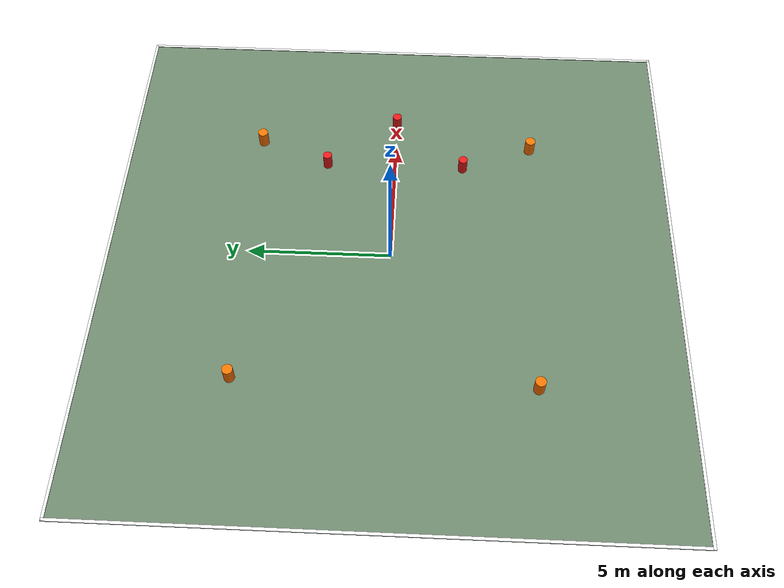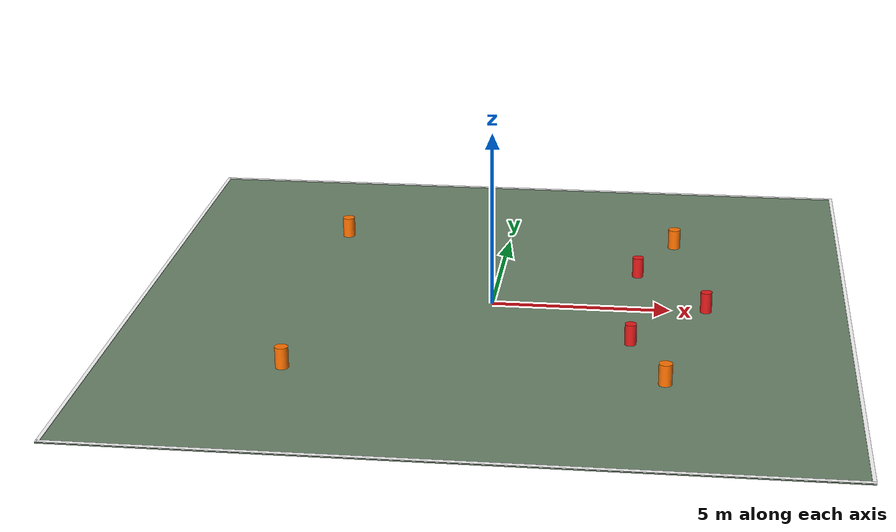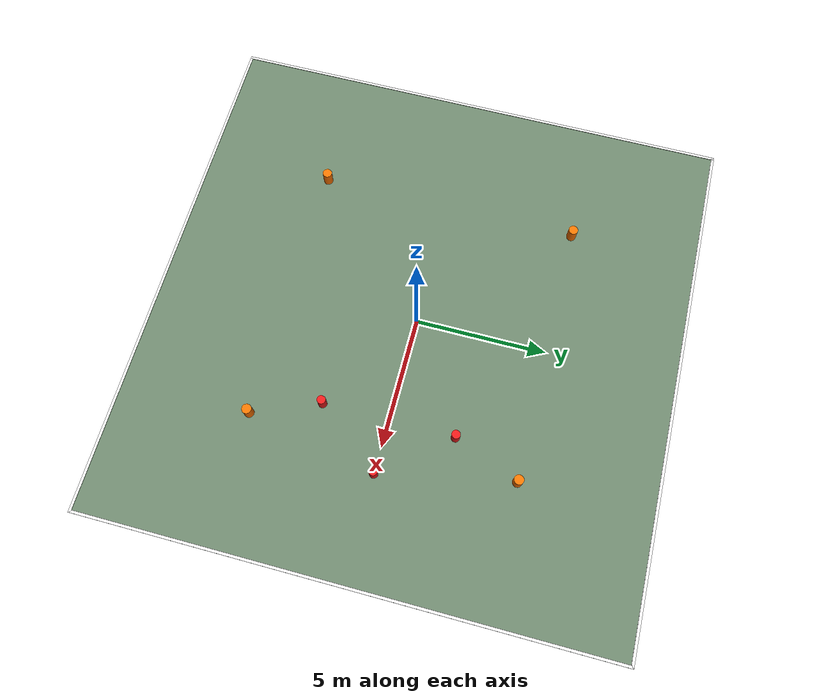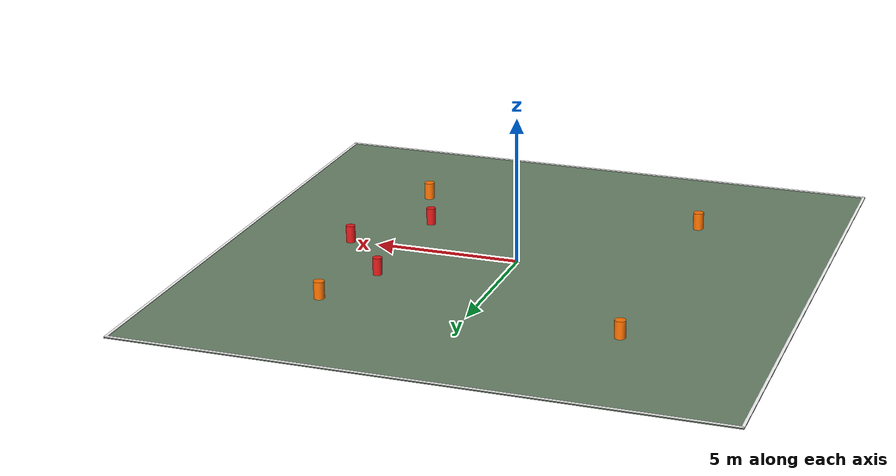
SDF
<?xml version="1.0" ?>
<sdf version="1.6">
  <world name="pioneer3at_slalom">

    <gravity>0 0 -9.8</gravity>
    <magnetic_field>6e-06 2.3e-05 -4.2e-05</magnetic_field>
    <physics type="ode">
      <max_step_size>0.001</max_step_size>
      <real_time_factor>1</real_time_factor>
      <real_time_update_rate>1000</real_time_update_rate>
    </physics>

    <!-- Required for camera and gpu_lidar sensors to publish data -->
    <plugin filename="gz-sim-sensors-system"
            name="gz::sim::systems::Sensors">
      <render_engine>ogre2</render_engine>
    </plugin>

    <scene>
      <ambient>0.45 0.45 0.45 1</ambient>
      <background>0.8 0.9 1.0 1</background>
      <shadows>true</shadows>
    </scene>

    <light name="sun" type="directional">
      <cast_shadows>true</cast_shadows>
      <pose>0 0 20 0 0 0</pose>
      <diffuse>0.8 0.8 0.8 1</diffuse>
      <specular>0.2 0.2 0.2 1</specular>
      <attenuation>
        <range>1000</range>
        <constant>0.9</constant>
        <linear>0.01</linear>
        <quadratic>0.001</quadratic>
      </attenuation>
      <direction>-0.35 0.2 -0.9</direction>
    </light>

    <model name="test_ground">
      <static>true</static>
      <link name="ground_link">
        <collision name="ground_collision">
          <geometry>
            <box>
              <size>20 20 0.02</size>
            </box>
          </geometry>
        </collision>
        <visual name="ground_visual">
          <geometry>
            <box>
              <size>20 20 0.02</size>
            </box>
          </geometry>
          <material>
            <ambient>0.35 0.45 0.35 1</ambient>
            <diffuse>0.42 0.52 0.42 1</diffuse>
            <specular>0.1 0.1 0.1 1</specular>
          </material>
        </visual>
      </link>
    </model>

    <model name="boundary_lines">
      <static>true</static>
      <link name="boundary_link">
        <visual name="north_line">
          <pose>0 9.95 0.03 0 0 0</pose>
          <geometry>
            <box>
              <size>20 0.1 0.02</size>
            </box>
          </geometry>
          <material>
            <ambient>1 1 1 1</ambient>
            <diffuse>1 1 1 1</diffuse>
          </material>
        </visual>
        <visual name="south_line">
          <pose>0 -9.95 0.03 0 0 0</pose>
          <geometry>
            <box>
              <size>20 0.1 0.02</size>
            </box>
          </geometry>
          <material>
            <ambient>1 1 1 1</ambient>
            <diffuse>1 1 1 1</diffuse>
          </material>
        </visual>
        <visual name="east_line">
          <pose>9.95 0 0.03 0 0 0</pose>
          <geometry>
            <box>
              <size>0.1 20 0.02</size>
            </box>
          </geometry>
          <material>
            <ambient>1 1 1 1</ambient>
            <diffuse>1 1 1 1</diffuse>
          </material>
        </visual>
        <visual name="west_line">
          <pose>-9.95 0 0.03 0 0 0</pose>
          <geometry>
            <box>
              <size>0.1 20 0.02</size>
            </box>
          </geometry>
          <material>
            <ambient>1 1 1 1</ambient>
            <diffuse>1 1 1 1</diffuse>
          </material>
        </visual>
      </link>
    </model>

    <!-- Robot is spawned by sim_bringup.launch.py via ros_gz_sim create -->

    <model name="orange_cone_1">
      <static>true</static>
      <pose>-5 -5 0 0 0 0</pose>
      <link name="link">
        <collision name="collision">
          <pose>0 0 0.3 0 0 0</pose>
          <geometry>
            <cylinder>
              <radius>0.18</radius>
              <length>0.6</length>
            </cylinder>
          </geometry>
        </collision>
        <visual name="visual">
          <pose>0 0 0.3 0 0 0</pose>
          <geometry>
            <cylinder>
              <radius>0.18</radius>
              <length>0.6</length>
            </cylinder>
          </geometry>
          <material>
            <ambient>1.0 0.45 0.0 1</ambient>
            <diffuse>1.0 0.45 0.0 1</diffuse>
            <specular>0.2 0.2 0.2 1</specular>
          </material>
        </visual>
      </link>
    </model>

    <model name="orange_cone_2">
      <static>true</static>
      <pose>5 -5 0 0 0 0</pose>
      <link name="link">
        <collision name="collision">
          <pose>0 0 0.3 0 0 0</pose>
          <geometry>
            <cylinder>
              <radius>0.18</radius>
              <length>0.6</length>
            </cylinder>
          </geometry>
        </collision>
        <visual name="visual">
          <pose>0 0 0.3 0 0 0</pose>
          <geometry>
            <cylinder>
              <radius>0.18</radius>
              <length>0.6</length>
            </cylinder>
          </geometry>
          <material>
            <ambient>1.0 0.45 0.0 1</ambient>
            <diffuse>1.0 0.45 0.0 1</diffuse>
            <specular>0.2 0.2 0.2 1</specular>
          </material>
        </visual>
      </link>
    </model>

    <model name="orange_cone_3">
      <static>true</static>
      <pose>5 5 0 0 0 0</pose>
      <link name="link">
        <collision name="collision">
          <pose>0 0 0.3 0 0 0</pose>
          <geometry>
            <cylinder>
              <radius>0.18</radius>
              <length>0.6</length>
            </cylinder>
          </geometry>
        </collision>
        <visual name="visual">
          <pose>0 0 0.3 0 0 0</pose>
          <geometry>
            <cylinder>
              <radius>0.18</radius>
              <length>0.6</length>
            </cylinder>
          </geometry>
          <material>
            <ambient>1.0 0.45 0.0 1</ambient>
            <diffuse>1.0 0.45 0.0 1</diffuse>
            <specular>0.2 0.2 0.2 1</specular>
          </material>
        </visual>
      </link>
    </model>

    <model name="orange_cone_4">
      <static>true</static>
      <pose>-5 5 0 0 0 0</pose>
      <link name="link">
        <collision name="collision">
          <pose>0 0 0.3 0 0 0</pose>
          <geometry>
            <cylinder>
              <radius>0.18</radius>
              <length>0.6</length>
            </cylinder>
          </geometry>
        </collision>
        <visual name="visual">
          <pose>0 0 0.3 0 0 0</pose>
          <geometry>
            <cylinder>
              <radius>0.18</radius>
              <length>0.6</length>
            </cylinder>
          </geometry>
          <material>
            <ambient>1.0 0.45 0.0 1</ambient>
            <diffuse>1.0 0.45 0.0 1</diffuse>
            <specular>0.2 0.2 0.2 1</specular>
          </material>
        </visual>
      </link>
    </model>

    <model name="red_cone_1">
      <static>true</static>
      <pose>4 -2.5 0 0 0 0</pose>
      <link name="link">
        <collision name="collision">
          <pose>0 0 0.3 0 0 0</pose>
          <geometry>
            <cylinder>
              <radius>0.16</radius>
              <length>0.6</length>
            </cylinder>
          </geometry>
        </collision>
        <visual name="visual">
          <pose>0 0 0.3 0 0 0</pose>
          <geometry>
            <cylinder>
              <radius>0.16</radius>
              <length>0.6</length>
            </cylinder>
          </geometry>
          <material>
            <ambient>0.9 0.1 0.1 1</ambient>
            <diffuse>0.9 0.1 0.1 1</diffuse>
            <specular>0.2 0.2 0.2 1</specular>
          </material>
        </visual>
      </link>
    </model>

    <model name="red_cone_2">
      <static>true</static>
      <pose>6 0 0 0 0 0</pose>
      <link name="link">
        <collision name="collision">
          <pose>0 0 0.3 0 0 0</pose>
          <geometry>
            <cylinder>
              <radius>0.16</radius>
              <length>0.6</length>
            </cylinder>
          </geometry>
        </collision>
        <visual name="visual">
          <pose>0 0 0.3 0 0 0</pose>
          <geometry>
            <cylinder>
              <radius>0.16</radius>
              <length>0.6</length>
            </cylinder>
          </geometry>
          <material>
            <ambient>0.9 0.1 0.1 1</ambient>
            <diffuse>0.9 0.1 0.1 1</diffuse>
            <specular>0.2 0.2 0.2 1</specular>
          </material>
        </visual>
      </link>
    </model>

    <model name="red_cone_3">
      <static>true</static>
      <pose>4 2.5 0 0 0 0</pose>
      <link name="link">
        <collision name="collision">
          <pose>0 0 0.3 0 0 0</pose>
          <geometry>
            <cylinder>
              <radius>0.16</radius>
              <length>0.6</length>
            </cylinder>
          </geometry>
        </collision>
        <visual name="visual">
          <pose>0 0 0.3 0 0 0</pose>
          <geometry>
            <cylinder>
              <radius>0.16</radius>
              <length>0.6</length>
            </cylinder>
          </geometry>
          <material>
            <ambient>0.9 0.1 0.1 1</ambient>
            <diffuse>0.9 0.1 0.1 1</diffuse>
            <specular>0.2 0.2 0.2 1</specular>
          </material>
        </visual>
      </link>
    </model>

    <gui fullscreen="0">
      <camera name="user_camera">
        <pose>0 -14 13 0 0.72 1.5708</pose>
        <view_controller>orbit</view_controller>
        <projection_type>perspective</projection_type>
      </camera>
    </gui>
  </world>
</sdf>
